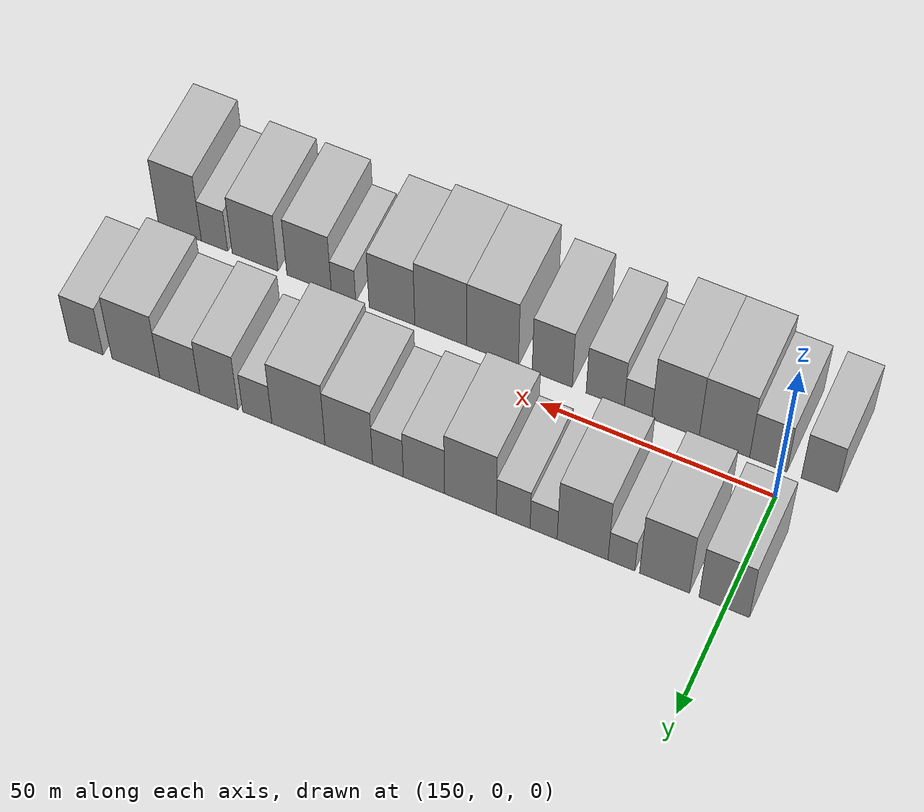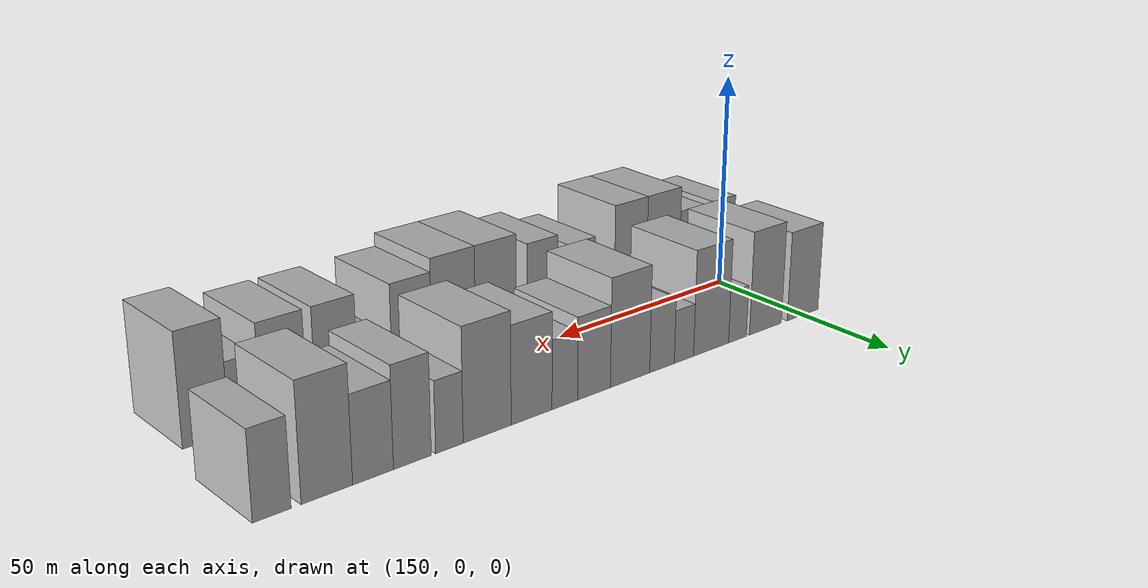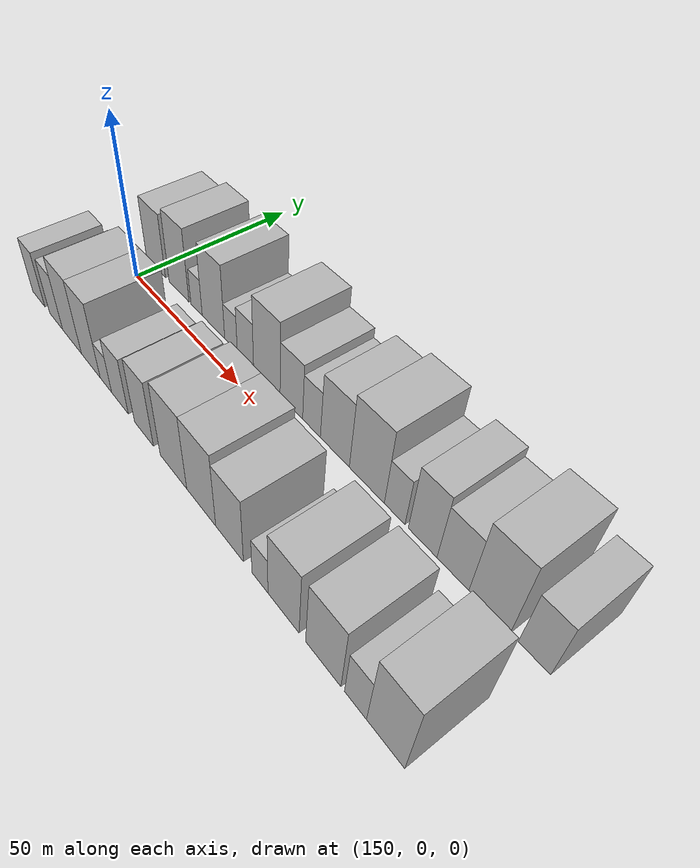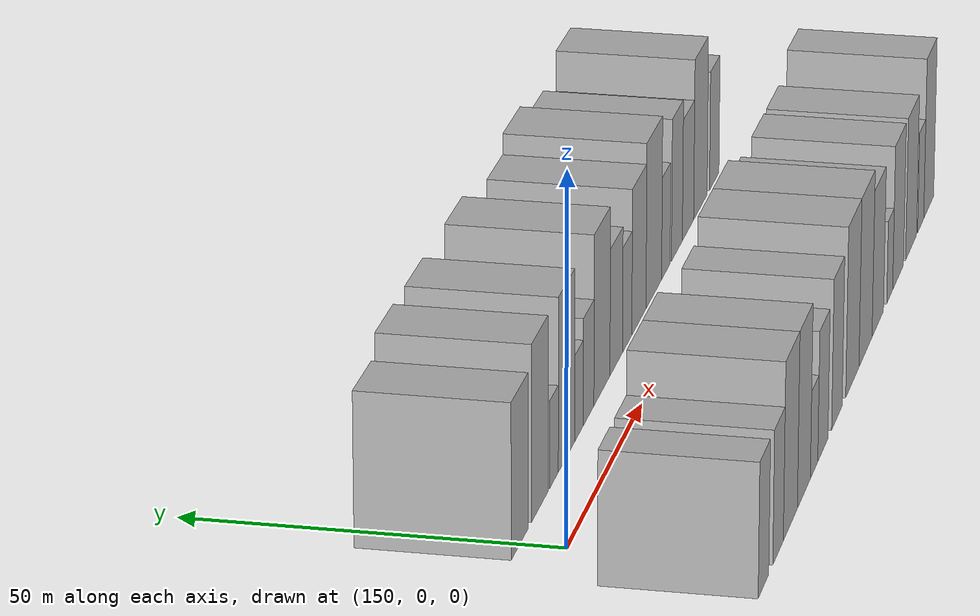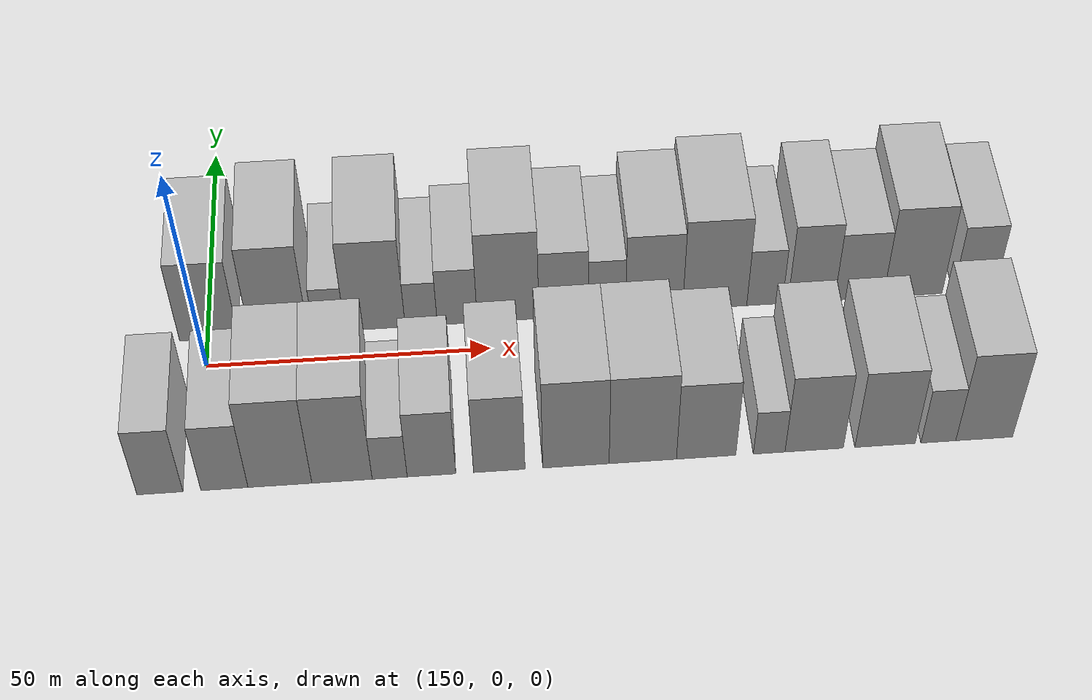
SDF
<sdf version="1.6">
 <world name="default">
  <model name="building_15">
   <static>1</static>
   <pose>150.1657 16.0000 0 0.000000 0.000000 1.570796</pose>
   <link name="link">
    <pose>0 0 10.50 0 0 0</pose>
    <collision name="collision"><geometry><box><size>20.0000 10.3860 21.0000</size></box></geometry></collision>
    <visual name="visual">
     <cast_shadows>0</cast_shadows>
     <geometry><box><size>20.0000 10.3860 21.0000</size></box></geometry>
     <material>
      <script>
       <uri>model://HANNAS_wall/materials/scripts</uri>
       <uri>model://HANNAS_wall/materials/textures</uri>
       <name>vrc/HANNAS_wall</name>
      </script>
     </material>
    </visual>
   </link>
  </model>
  <model name="building_16">
   <static>1</static>
   <pose>162.5402 16.0000 0 0.000000 0.000000 1.570796</pose>
   <link name="link">
    <pose>0 0 12.00 0 0 0</pose>
    <collision name="collision"><geometry><box><size>20.0000 10.3630 24.0000</size></box></geometry></collision>
    <visual name="visual">
     <cast_shadows>0</cast_shadows>
     <geometry><box><size>20.0000 10.3630 24.0000</size></box></geometry>
     <material>
      <script>
       <uri>model://HANNAS_wall/materials/scripts</uri>
       <uri>model://HANNAS_wall/materials/textures</uri>
       <name>vrc/HANNAS_wall</name>
      </script>
     </material>
    </visual>
   </link>
  </model>
  <model name="building_17">
   <static>1</static>
   <pose>171.5231 16.0000 0 0.000000 0.000000 1.570796</pose>
   <link name="link">
    <pose>0 0 6.00 0 0 0</pose>
    <collision name="collision"><geometry><box><size>20.0000 5.6028 12.0000</size></box></geometry></collision>
    <visual name="visual">
     <cast_shadows>0</cast_shadows>
     <geometry><box><size>20.0000 5.6028 12.0000</size></box></geometry>
     <material>
      <script>
       <uri>model://HANNAS_wall/materials/scripts</uri>
       <uri>model://HANNAS_wall/materials/textures</uri>
       <name>vrc/HANNAS_wall</name>
      </script>
     </material>
    </visual>
   </link>
  </model>
  <model name="building_18">
   <static>1</static>
   <pose>179.6809 16.0000 0 0.000000 0.000000 1.570796</pose>
   <link name="link">
    <pose>0 0 12.00 0 0 0</pose>
    <collision name="collision"><geometry><box><size>20.0000 10.7129 24.0000</size></box></geometry></collision>
    <visual name="visual">
     <cast_shadows>0</cast_shadows>
     <geometry><box><size>20.0000 10.7129 24.0000</size></box></geometry>
     <material>
      <script>
       <uri>model://HANNAS_wall/materials/scripts</uri>
       <uri>model://HANNAS_wall/materials/textures</uri>
       <name>vrc/HANNAS_wall</name>
      </script>
     </material>
    </visual>
   </link>
  </model>
  <model name="building_19">
   <static>1</static>
   <pose>187.9034 16.0000 0 0.000000 0.000000 1.570796</pose>
   <link name="link">
    <pose>0 0 6.00 0 0 0</pose>
    <collision name="collision"><geometry><box><size>20.0000 5.7320 12.0000</size></box></geometry></collision>
    <visual name="visual">
     <cast_shadows>0</cast_shadows>
     <geometry><box><size>20.0000 5.7320 12.0000</size></box></geometry>
     <material>
      <script>
       <uri>model://HANNAS_wall/materials/scripts</uri>
       <uri>model://HANNAS_wall/materials/textures</uri>
       <name>vrc/HANNAS_wall</name>
      </script>
     </material>
    </visual>
   </link>
  </model>
  <model name="building_20">
   <static>1</static>
   <pose>194.3433 16.0000 0 0.000000 0.000000 1.570796</pose>
   <link name="link">
    <pose>0 0 7.50 0 0 0</pose>
    <collision name="collision"><geometry><box><size>20.0000 7.1477 15.0000</size></box></geometry></collision>
    <visual name="visual">
     <cast_shadows>0</cast_shadows>
     <geometry><box><size>20.0000 7.1477 15.0000</size></box></geometry>
     <material>
      <script>
       <uri>model://HANNAS_wall/materials/scripts</uri>
       <uri>model://HANNAS_wall/materials/textures</uri>
       <name>vrc/HANNAS_wall</name>
      </script>
     </material>
    </visual>
   </link>
  </model>
  <model name="building_21">
   <static>1</static>
   <pose>203.4405 16.0000 0 0.000000 0.000000 1.570796</pose>
   <link name="link">
    <pose>0 0 12.00 0 0 0</pose>
    <collision name="collision"><geometry><box><size>20.0000 11.0467 24.0000</size></box></geometry></collision>
    <visual name="visual">
     <cast_shadows>0</cast_shadows>
     <geometry><box><size>20.0000 11.0467 24.0000</size></box></geometry>
     <material>
      <script>
       <uri>model://HANNAS_wall/materials/scripts</uri>
       <uri>model://HANNAS_wall/materials/textures</uri>
       <name>vrc/HANNAS_wall</name>
      </script>
     </material>
    </visual>
   </link>
  </model>
  <model name="building_22">
   <static>1</static>
   <pose>213.4053 16.0000 0 0.000000 0.000000 1.570796</pose>
   <link name="link">
    <pose>0 0 9.00 0 0 0</pose>
    <collision name="collision"><geometry><box><size>20.0000 8.8829 18.0000</size></box></geometry></collision>
    <visual name="visual">
     <cast_shadows>0</cast_shadows>
     <geometry><box><size>20.0000 8.8829 18.0000</size></box></geometry>
     <material>
      <script>
       <uri>model://HANNAS_wall/materials/scripts</uri>
       <uri>model://HANNAS_wall/materials/textures</uri>
       <name>vrc/HANNAS_wall</name>
      </script>
     </material>
    </visual>
   </link>
  </model>
  <model name="building_23">
   <static>1</static>
   <pose>221.1736 16.0000 0 0.000000 0.000000 1.570796</pose>
   <link name="link">
    <pose>0 0 7.50 0 0 0</pose>
    <collision name="collision"><geometry><box><size>20.0000 6.6537 15.0000</size></box></geometry></collision>
    <visual name="visual">
     <cast_shadows>0</cast_shadows>
     <geometry><box><size>20.0000 6.6537 15.0000</size></box></geometry>
     <material>
      <script>
       <uri>model://HANNAS_wall/materials/scripts</uri>
       <uri>model://HANNAS_wall/materials/textures</uri>
       <name>vrc/HANNAS_wall</name>
      </script>
     </material>
    </visual>
   </link>
  </model>
  <model name="building_24">
   <static>1</static>
   <pose>229.6702 16.0000 0 0.000000 0.000000 1.570796</pose>
   <link name="link">
    <pose>0 0 10.50 0 0 0</pose>
    <collision name="collision"><geometry><box><size>20.0000 10.3395 21.0000</size></box></geometry></collision>
    <visual name="visual">
     <cast_shadows>0</cast_shadows>
     <geometry><box><size>20.0000 10.3395 21.0000</size></box></geometry>
     <material>
      <script>
       <uri>model://HANNAS_wall/materials/scripts</uri>
       <uri>model://HANNAS_wall/materials/textures</uri>
       <name>vrc/HANNAS_wall</name>
      </script>
     </material>
    </visual>
   </link>
  </model>
  <model name="building_25">
   <static>1</static>
   <pose>240.6604 16.0000 0 0.000000 0.000000 1.570796</pose>
   <link name="link">
    <pose>0 0 12.00 0 0 0</pose>
    <collision name="collision"><geometry><box><size>20.0000 11.6411 24.0000</size></box></geometry></collision>
    <visual name="visual">
     <cast_shadows>0</cast_shadows>
     <geometry><box><size>20.0000 11.6411 24.0000</size></box></geometry>
     <material>
      <script>
       <uri>model://HANNAS_wall/materials/scripts</uri>
       <uri>model://HANNAS_wall/materials/textures</uri>
       <name>vrc/HANNAS_wall</name>
      </script>
     </material>
    </visual>
   </link>
  </model>
  <model name="building_26">
   <static>1</static>
   <pose>249.7132 16.0000 0 0.000000 0.000000 1.570796</pose>
   <link name="link">
    <pose>0 0 7.50 0 0 0</pose>
    <collision name="collision"><geometry><box><size>20.0000 6.4644 15.0000</size></box></geometry></collision>
    <visual name="visual">
     <cast_shadows>0</cast_shadows>
     <geometry><box><size>20.0000 6.4644 15.0000</size></box></geometry>
     <material>
      <script>
       <uri>model://HANNAS_wall/materials/scripts</uri>
       <uri>model://HANNAS_wall/materials/textures</uri>
       <name>vrc/HANNAS_wall</name>
      </script>
     </material>
    </visual>
   </link>
  </model>
  <model name="building_27">
   <static>1</static>
   <pose>258.1947 16.0000 0 0.000000 0.000000 1.570796</pose>
   <link name="link">
    <pose>0 0 10.50 0 0 0</pose>
    <collision name="collision"><geometry><box><size>20.0000 8.4985 21.0000</size></box></geometry></collision>
    <visual name="visual">
     <cast_shadows>0</cast_shadows>
     <geometry><box><size>20.0000 8.4985 21.0000</size></box></geometry>
     <material>
      <script>
       <uri>model://HANNAS_wall/materials/scripts</uri>
       <uri>model://HANNAS_wall/materials/textures</uri>
       <name>vrc/HANNAS_wall</name>
      </script>
     </material>
    </visual>
   </link>
  </model>
  <model name="building_28">
   <static>1</static>
   <pose>266.8951 16.0000 0 0.000000 0.000000 1.570796</pose>
   <link name="link">
    <pose>0 0 9.00 0 0 0</pose>
    <collision name="collision"><geometry><box><size>20.0000 8.9024 18.0000</size></box></geometry></collision>
    <visual name="visual">
     <cast_shadows>0</cast_shadows>
     <geometry><box><size>20.0000 8.9024 18.0000</size></box></geometry>
     <material>
      <script>
       <uri>model://HANNAS_wall/materials/scripts</uri>
       <uri>model://HANNAS_wall/materials/textures</uri>
       <name>vrc/HANNAS_wall</name>
      </script>
     </material>
    </visual>
   </link>
  </model>
  <model name="building_29">
   <static>1</static>
   <pose>276.7235 16.0000 0 0.000000 0.000000 1.570796</pose>
   <link name="link">
    <pose>0 0 12.00 0 0 0</pose>
    <collision name="collision"><geometry><box><size>20.0000 10.7544 24.0000</size></box></geometry></collision>
    <visual name="visual">
     <cast_shadows>0</cast_shadows>
     <geometry><box><size>20.0000 10.7544 24.0000</size></box></geometry>
     <material>
      <script>
       <uri>model://HANNAS_wall/materials/scripts</uri>
       <uri>model://HANNAS_wall/materials/textures</uri>
       <name>vrc/HANNAS_wall</name>
      </script>
     </material>
    </visual>
   </link>
  </model>
  <model name="building_30">
   <static>1</static>
   <pose>287.9620 16.0000 0 0.000000 0.000000 1.570796</pose>
   <link name="link">
    <pose>0 0 9.00 0 0 0</pose>
    <collision name="collision"><geometry><box><size>20.0000 7.7226 18.0000</size></box></geometry></collision>
    <visual name="visual">
     <cast_shadows>0</cast_shadows>
     <geometry><box><size>20.0000 7.7226 18.0000</size></box></geometry>
     <material>
      <script>
       <uri>model://HANNAS_wall/materials/scripts</uri>
       <uri>model://HANNAS_wall/materials/textures</uri>
       <name>vrc/HANNAS_wall</name>
      </script>
     </material>
    </visual>
   </link>
  </model>
  <model name="building_46">
   <static>1</static>
   <pose>143.0899 -16.0000 0 0.000000 0.000000 1.570796</pose>
   <link name="link">
    <pose>0 0 9.00 0 0 0</pose>
    <collision name="collision"><geometry><box><size>20.0000 7.6640 18.0000</size></box></geometry></collision>
    <visual name="visual">
     <cast_shadows>0</cast_shadows>
     <geometry><box><size>20.0000 7.6640 18.0000</size></box></geometry>
     <material>
      <script>
       <uri>model://HANNAS_wall/materials/scripts</uri>
       <uri>model://HANNAS_wall/materials/textures</uri>
       <name>vrc/HANNAS_wall</name>
      </script>
     </material>
    </visual>
   </link>
  </model>
  <model name="building_47">
   <static>1</static>
   <pose>153.8570 -16.0000 0 0.000000 0.000000 1.570796</pose>
   <link name="link">
    <pose>0 0 9.00 0 0 0</pose>
    <collision name="collision"><geometry><box><size>20.0000 7.8702 18.0000</size></box></geometry></collision>
    <visual name="visual">
     <cast_shadows>0</cast_shadows>
     <geometry><box><size>20.0000 7.8702 18.0000</size></box></geometry>
     <material>
      <script>
       <uri>model://HANNAS_wall/materials/scripts</uri>
       <uri>model://HANNAS_wall/materials/textures</uri>
       <name>vrc/HANNAS_wall</name>
      </script>
     </material>
    </visual>
   </link>
  </model>
  <model name="building_48">
   <static>1</static>
   <pose>163.1439 -16.0000 0 0.000000 0.000000 1.570796</pose>
   <link name="link">
    <pose>0 0 12.00 0 0 0</pose>
    <collision name="collision"><geometry><box><size>20.0000 10.7037 24.0000</size></box></geometry></collision>
    <visual name="visual">
     <cast_shadows>0</cast_shadows>
     <geometry><box><size>20.0000 10.7037 24.0000</size></box></geometry>
     <material>
      <script>
       <uri>model://HANNAS_wall/materials/scripts</uri>
       <uri>model://HANNAS_wall/materials/textures</uri>
       <name>vrc/HANNAS_wall</name>
      </script>
     </material>
    </visual>
   </link>
  </model>
  <model name="building_49">
   <static>1</static>
   <pose>173.5674 -16.0000 0 0.000000 0.000000 1.570796</pose>
   <link name="link">
    <pose>0 0 12.00 0 0 0</pose>
    <collision name="collision"><geometry><box><size>20.0000 10.1433 24.0000</size></box></geometry></collision>
    <visual name="visual">
     <cast_shadows>0</cast_shadows>
     <geometry><box><size>20.0000 10.1433 24.0000</size></box></geometry>
     <material>
      <script>
       <uri>model://HANNAS_wall/materials/scripts</uri>
       <uri>model://HANNAS_wall/materials/textures</uri>
       <name>vrc/HANNAS_wall</name>
      </script>
     </material>
    </visual>
   </link>
  </model>
  <model name="building_50">
   <static>1</static>
   <pose>181.5880 -16.0000 0 0.000000 0.000000 1.570796</pose>
   <link name="link">
    <pose>0 0 6.00 0 0 0</pose>
    <collision name="collision"><geometry><box><size>20.0000 5.8977 12.0000</size></box></geometry></collision>
    <visual name="visual">
     <cast_shadows>0</cast_shadows>
     <geometry><box><size>20.0000 5.8977 12.0000</size></box></geometry>
     <material>
      <script>
       <uri>model://HANNAS_wall/materials/scripts</uri>
       <uri>model://HANNAS_wall/materials/textures</uri>
       <name>vrc/HANNAS_wall</name>
      </script>
     </material>
    </visual>
   </link>
  </model>
  <model name="building_51">
   <static>1</static>
   <pose>188.6408 -16.0000 0 0.000000 0.000000 1.570796</pose>
   <link name="link">
    <pose>0 0 9.00 0 0 0</pose>
    <collision name="collision"><geometry><box><size>20.0000 8.2078 18.0000</size></box></geometry></collision>
    <visual name="visual">
     <cast_shadows>0</cast_shadows>
     <geometry><box><size>20.0000 8.2078 18.0000</size></box></geometry>
     <material>
      <script>
       <uri>model://HANNAS_wall/materials/scripts</uri>
       <uri>model://HANNAS_wall/materials/textures</uri>
       <name>vrc/HANNAS_wall</name>
      </script>
     </material>
    </visual>
   </link>
  </model>
  <model name="building_52">
   <static>1</static>
   <pose>200.1065 -16.0000 0 0.000000 0.000000 1.570796</pose>
   <link name="link">
    <pose>0 0 10.50 0 0 0</pose>
    <collision name="collision"><geometry><box><size>20.0000 8.7236 21.0000</size></box></geometry></collision>
    <visual name="visual">
     <cast_shadows>0</cast_shadows>
     <geometry><box><size>20.0000 8.7236 21.0000</size></box></geometry>
     <material>
      <script>
       <uri>model://HANNAS_wall/materials/scripts</uri>
       <uri>model://HANNAS_wall/materials/textures</uri>
       <name>vrc/HANNAS_wall</name>
      </script>
     </material>
    </visual>
   </link>
  </model>
  <model name="building_53">
   <static>1</static>
   <pose>213.1081 -16.0000 0 0.000000 0.000000 1.570796</pose>
   <link name="link">
    <pose>0 0 12.00 0 0 0</pose>
    <collision name="collision"><geometry><box><size>20.0000 11.2798 24.0000</size></box></geometry></collision>
    <visual name="visual">
     <cast_shadows>0</cast_shadows>
     <geometry><box><size>20.0000 11.2798 24.0000</size></box></geometry>
     <material>
      <script>
       <uri>model://HANNAS_wall/materials/scripts</uri>
       <uri>model://HANNAS_wall/materials/textures</uri>
       <name>vrc/HANNAS_wall</name>
      </script>
     </material>
    </visual>
   </link>
  </model>
  <model name="building_54">
   <static>1</static>
   <pose>224.4947 -16.0000 0 0.000000 0.000000 1.570796</pose>
   <link name="link">
    <pose>0 0 12.00 0 0 0</pose>
    <collision name="collision"><geometry><box><size>20.0000 11.4934 24.0000</size></box></geometry></collision>
    <visual name="visual">
     <cast_shadows>0</cast_shadows>
     <geometry><box><size>20.0000 11.4934 24.0000</size></box></geometry>
     <material>
      <script>
       <uri>model://HANNAS_wall/materials/scripts</uri>
       <uri>model://HANNAS_wall/materials/textures</uri>
       <name>vrc/HANNAS_wall</name>
      </script>
     </material>
    </visual>
   </link>
  </model>
  <model name="building_55">
   <static>1</static>
   <pose>235.3212 -16.0000 0 0.000000 0.000000 1.570796</pose>
   <link name="link">
    <pose>0 0 10.50 0 0 0</pose>
    <collision name="collision"><geometry><box><size>20.0000 10.1595 21.0000</size></box></geometry></collision>
    <visual name="visual">
     <cast_shadows>0</cast_shadows>
     <geometry><box><size>20.0000 10.1595 21.0000</size></box></geometry>
     <material>
      <script>
       <uri>model://HANNAS_wall/materials/scripts</uri>
       <uri>model://HANNAS_wall/materials/textures</uri>
       <name>vrc/HANNAS_wall</name>
      </script>
     </material>
    </visual>
   </link>
  </model>
  <model name="building_56">
   <static>1</static>
   <pose>246.1202 -16.0000 0 0.000000 0.000000 1.570796</pose>
   <link name="link">
    <pose>0 0 6.00 0 0 0</pose>
    <collision name="collision"><geometry><box><size>20.0000 5.4384 12.0000</size></box></geometry></collision>
    <visual name="visual">
     <cast_shadows>0</cast_shadows>
     <geometry><box><size>20.0000 5.4384 12.0000</size></box></geometry>
     <material>
      <script>
       <uri>model://HANNAS_wall/materials/scripts</uri>
       <uri>model://HANNAS_wall/materials/textures</uri>
       <name>vrc/HANNAS_wall</name>
      </script>
     </material>
    </visual>
   </link>
  </model>
  <model name="building_57">
   <static>1</static>
   <pose>253.8512 -16.0000 0 0.000000 0.000000 1.570796</pose>
   <link name="link">
    <pose>0 0 10.50 0 0 0</pose>
    <collision name="collision"><geometry><box><size>20.0000 10.0237 21.0000</size></box></geometry></collision>
    <visual name="visual">
     <cast_shadows>0</cast_shadows>
     <geometry><box><size>20.0000 10.0237 21.0000</size></box></geometry>
     <material>
      <script>
       <uri>model://HANNAS_wall/materials/scripts</uri>
       <uri>model://HANNAS_wall/materials/textures</uri>
       <name>vrc/HANNAS_wall</name>
      </script>
     </material>
    </visual>
   </link>
  </model>
  <model name="building_58">
   <static>1</static>
   <pose>266.0695 -16.0000 0 0.000000 0.000000 1.570796</pose>
   <link name="link">
    <pose>0 0 10.50 0 0 0</pose>
    <collision name="collision"><geometry><box><size>20.0000 10.4129 21.0000</size></box></geometry></collision>
    <visual name="visual">
     <cast_shadows>0</cast_shadows>
     <geometry><box><size>20.0000 10.4129 21.0000</size></box></geometry>
     <material>
      <script>
       <uri>model://HANNAS_wall/materials/scripts</uri>
       <uri>model://HANNAS_wall/materials/textures</uri>
       <name>vrc/HANNAS_wall</name>
      </script>
     </material>
    </visual>
   </link>
  </model>
  <model name="building_59">
   <static>1</static>
   <pose>275.2891 -16.0000 0 0.000000 0.000000 1.570796</pose>
   <link name="link">
    <pose>0 0 7.50 0 0 0</pose>
    <collision name="collision"><geometry><box><size>20.0000 6.0263 15.0000</size></box></geometry></collision>
    <visual name="visual">
     <cast_shadows>0</cast_shadows>
     <geometry><box><size>20.0000 6.0263 15.0000</size></box></geometry>
     <material>
      <script>
       <uri>model://HANNAS_wall/materials/scripts</uri>
       <uri>model://HANNAS_wall/materials/textures</uri>
       <name>vrc/HANNAS_wall</name>
      </script>
     </material>
    </visual>
   </link>
  </model>
  <model name="building_60">
   <static>1</static>
   <pose>283.2247 -16.0000 0 0.000000 0.000000 1.570796</pose>
   <link name="link">
    <pose>0 0 12.00 0 0 0</pose>
    <collision name="collision"><geometry><box><size>20.0000 9.8449 24.0000</size></box></geometry></collision>
    <visual name="visual">
     <cast_shadows>0</cast_shadows>
     <geometry><box><size>20.0000 9.8449 24.0000</size></box></geometry>
     <material>
      <script>
       <uri>model://HANNAS_wall/materials/scripts</uri>
       <uri>model://HANNAS_wall/materials/textures</uri>
       <name>vrc/HANNAS_wall</name>
      </script>
     </material>
    </visual>
   </link>
  </model>
 </world>
</sdf>
